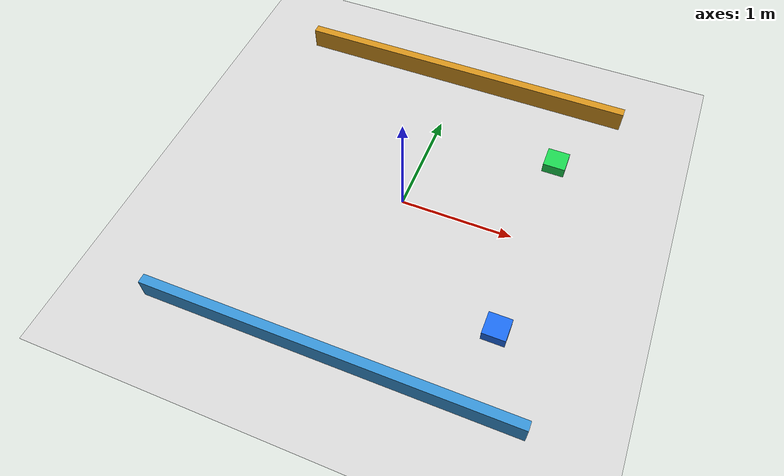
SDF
<?xml version="1.0"?>
<sdf version="1.6">
  <world name="remote_named_pose_validation">
    <include><uri>model://sun</uri></include>
    <include><uri>model://ground_plane</uri></include>
    <physics type="ode"><max_step_size>0.001</max_step_size><real_time_update_rate>1000</real_time_update_rate></physics>
    <scene><ambient>0.65 0.65 0.65 1</ambient><background>0.12 0.15 0.2 1</background></scene>
    <!-- 两侧低围挡对应MoveIt规划场景；位于最大伸展范围外，不挡住home/zero验证。 -->
    <model name="validation_fence_left">
      <static>true</static><pose>0 1.6 0.1 0 0 0</pose>
      <link name="body">
        <collision name="collision"><geometry><box><size>3.2 0.08 0.2</size></box></geometry></collision>
        <visual name="visual"><geometry><box><size>3.2 0.08 0.2</size></box></geometry><material><ambient>0.8 0.55 0.1 1</ambient><diffuse>0.8 0.55 0.1 1</diffuse></material></visual>
      </link>
    </model>
    <model name="validation_fence_right">
      <static>true</static><pose>0 -1.6 0.1 0 0 0</pose>
      <link name="body">
        <collision name="collision"><geometry><box><size>3.2 0.08 0.2</size></box></geometry></collision>
        <visual name="visual"><geometry><box><size>3.2 0.08 0.2</size></box></geometry><material><ambient>0.2 0.55 0.8 1</ambient><diffuse>0.2 0.55 0.8 1</diffuse></material></visual>
      </link>
    </model>
    <!-- 彩色参考块用于观察方向，不代表命名位置的末端目标点。 -->
    <model name="green_reference"><static>true</static><pose>1.15 0.9 0.05 0 0 0</pose><link name="body"><visual name="visual"><geometry><box><size>0.2 0.2 0.1</size></box></geometry><material><ambient>0.1 0.8 0.3 1</ambient><diffuse>0.1 0.8 0.3 1</diffuse></material></visual></link></model>
    <model name="blue_reference"><static>true</static><pose>1.15 -0.9 0.05 0 0 0</pose><link name="body"><visual name="visual"><geometry><box><size>0.2 0.2 0.1</size></box></geometry><material><ambient>0.1 0.4 0.9 1</ambient><diffuse>0.1 0.4 0.9 1</diffuse></material></visual></link></model>
    <gui><camera name="validation_camera"><pose>2.4 -2.4 1.8 0 0.4 2.35</pose></camera></gui>
  </world>
</sdf>
